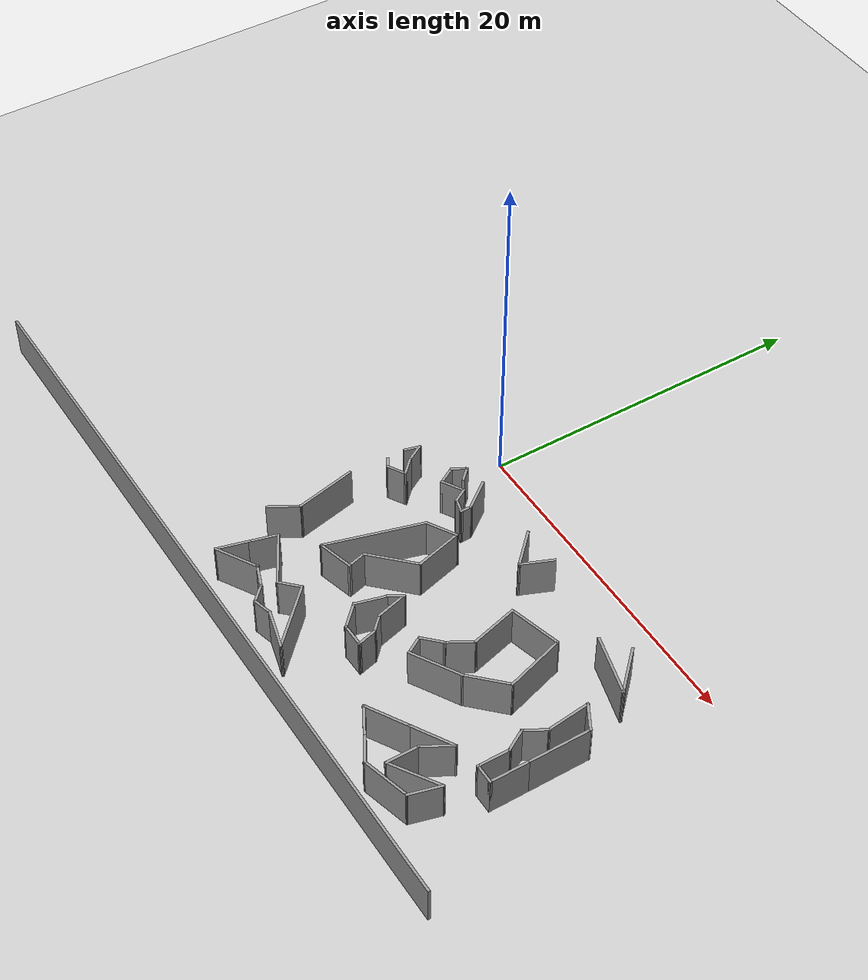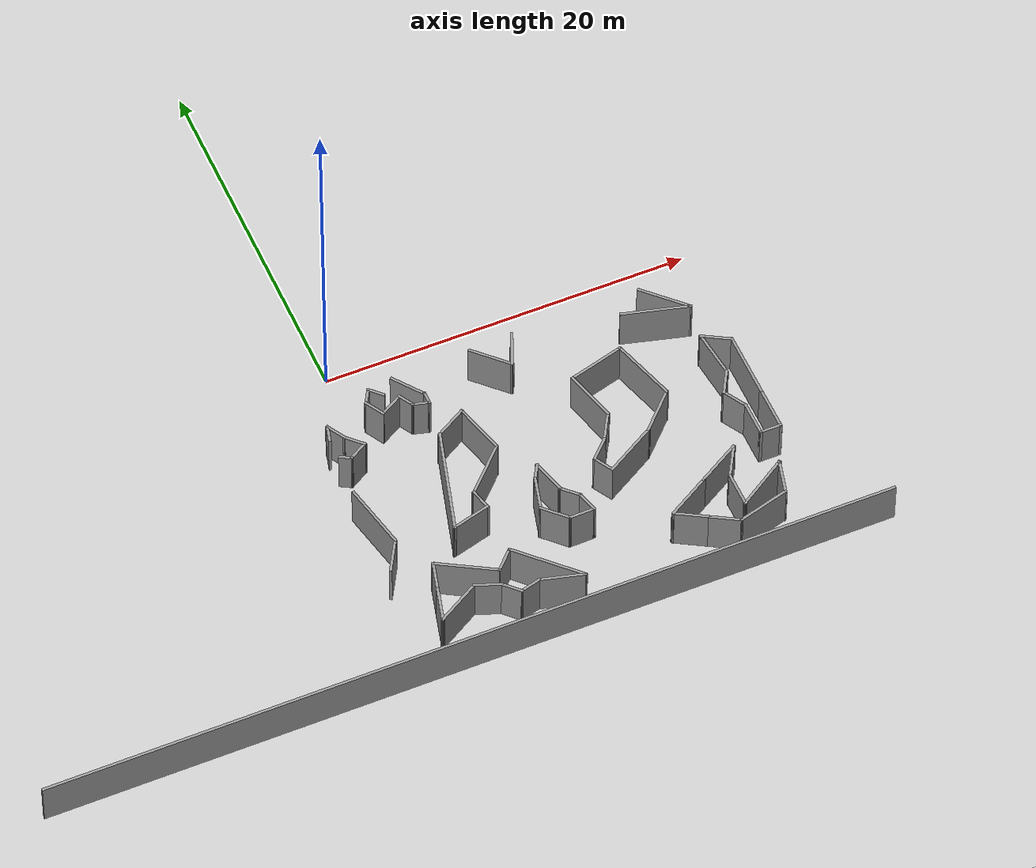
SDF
<sdf version="1.6">
 <world name="default">
  <model name="ground_plane">
   <static>1</static>
   <link name="link">
    <collision name="collision">
     <geometry><plane><normal>0 0 1</normal><size>100 100</size></plane></geometry>
     <surface><friction><ode><mu>100</mu><mu2>50</mu2></ode></friction></surface>
    </collision>
    <visual name="visual">
     <cast_shadows>0</cast_shadows>
     <geometry><plane><normal>0 0 1</normal><size>100 100</size></plane></geometry>
     <material>
      <script><uri>file://media/materials/scripts/gazebo.material</uri><name>Gazebo/Grey</name></script>
     </material>
    </visual>
   </link>
  </model>
  <model name="square_1">
   <pose>0.009703 -0.009719 0 0 -0 0</pose>
   <link name="Wall_10">
    <collision name="Wall_10_Collision">
     <geometry><box><size>1.5 0.15 2.5</size></box></geometry>
     <pose>0 0 1.25 0 -0 0</pose>
    </collision>
    <visual name="Wall_10_Visual">
     <pose>0 0 1.25 0 -0 0</pose>
     <geometry><box><size>1.5 0.15 2.5</size></box></geometry>
     <material>
      <script><uri>file://media/materials/scripts/gazebo.material</uri><name>Gazebo/Grey</name></script>
      <ambient>1 1 1 1</ambient>
     </material>
     <meta><layer>0</layer></meta>
    </visual>
    <pose>1.77578 -4.36071 0 0 -0 0.523599</pose>
   </link>
   <link name="Wall_11">
    <collision name="Wall_11_Collision">
     <geometry><box><size>1 0.15 2.5</size></box></geometry>
     <pose>0 0 1.25 0 -0 0</pose>
    </collision>
    <visual name="Wall_11_Visual">
     <pose>0 0 1.25 0 -0 0</pose>
     <geometry><box><size>1 0.15 2.5</size></box></geometry>
     <material>
      <script><uri>file://media/materials/scripts/gazebo.material</uri><name>Gazebo/Grey</name></script>
      <ambient>1 1 1 1</ambient>
     </material>
     <meta><layer>0</layer></meta>
    </visual>
    <pose>2.57284 -4.39128 0 0 0 -1.0472</pose>
   </link>
   <link name="Wall_12">
    <collision name="Wall_12_Collision">
     <geometry><box><size>1 0.15 2.5</size></box></geometry>
     <pose>0 0 1.25 0 -0 0</pose>
    </collision>
    <visual name="Wall_12_Visual">
     <pose>0 0 1.25 0 -0 0</pose>
     <geometry><box><size>1 0.15 2.5</size></box></geometry>
     <material>
      <script><uri>file://media/materials/scripts/gazebo.material</uri><name>Gazebo/Grey</name></script>
      <ambient>1 1 1 1</ambient>
     </material>
     <meta><layer>0</layer></meta>
    </visual>
    <pose>3.19586 -4.86934 0 0 0 -0.261799</pose>
   </link>
   <link name="Wall_129">
    <collision name="Wall_129_Collision">
     <geometry><box><size>2 0.15 2.5</size></box></geometry>
     <pose>0 0 1.25 0 -0 0</pose>
    </collision>
    <visual name="Wall_129_Visual">
     <pose>0 0 1.25 0 -0 0</pose>
     <geometry><box><size>2 0.15 2.5</size></box></geometry>
     <material>
      <script><uri>file://media/materials/scripts/gazebo.material</uri><name>Gazebo/Grey</name></script>
      <ambient>1 1 1 1</ambient>
     </material>
     <meta><layer>0</layer></meta>
    </visual>
    <pose>4.11459 -6.575 0 0 -0 0.523599</pose>
   </link>
   <link name="Wall_13">
    <collision name="Wall_13_Collision">
     <geometry><box><size>0.75 0.15 2.5</size></box></geometry>
     <pose>0 0 1.25 0 -0 0</pose>
    </collision>
    <visual name="Wall_13_Visual">
     <pose>0 0 1.25 0 -0 0</pose>
     <geometry><box><size>0.75 0.15 2.5</size></box></geometry>
     <material>
      <script><uri>file://media/materials/scripts/gazebo.material</uri><name>Gazebo/Grey</name></script>
      <ambient>1 1 1 1</ambient>
     </material>
     <meta><layer>0</layer></meta>
    </visual>
    <pose>3.60638 -4.67933 0 0 -0 1.5708</pose>
   </link>
   <link name="Wall_130">
    <collision name="Wall_130_Collision">
     <geometry><box><size>3 0.15 2.5</size></box></geometry>
     <pose>0 0 1.25 0 -0 0</pose>
    </collision>
    <visual name="Wall_130_Visual">
     <pose>0 0 1.25 0 -0 0</pose>
     <geometry><box><size>3 0.15 2.5</size></box></geometry>
     <material>
      <script><uri>file://media/materials/scripts/gazebo.material</uri><name>Gazebo/Grey</name></script>
      <ambient>1 1 1 1</ambient>
     </material>
     <meta><layer>0</layer></meta>
    </visual>
    <pose>5.28448 -7.48894 0 0 0 -1.309</pose>
   </link>
   <link name="Wall_131">
    <collision name="Wall_131_Collision">
     <geometry><box><size>3.25 0.15 2.5</size></box></geometry>
     <pose>0 0 1.25 0 -0 0</pose>
    </collision>
    <visual name="Wall_131_Visual">
     <pose>0 0 1.25 0 -0 0</pose>
     <geometry><box><size>3.25 0.15 2.5</size></box></geometry>
     <material>
      <script><uri>file://media/materials/scripts/gazebo.material</uri><name>Gazebo/Grey</name></script>
      <ambient>1 1 1 1</ambient>
     </material>
     <meta><layer>0</layer></meta>
    </visual>
    <pose>4.55728 -9.9614 0 0 0 -2.35619</pose>
   </link>
   <link name="Wall_132">
    <collision name="Wall_132_Collision">
     <geometry><box><size>1.25 0.15 2.5</size></box></geometry>
     <pose>0 0 1.25 0 -0 0</pose>
    </collision>
    <visual name="Wall_132_Visual">
     <pose>0 0 1.25 0 -0 0</pose>
     <geometry><box><size>1.25 0.15 2.5</size></box></geometry>
     <material>
      <script><uri>file://media/materials/scripts/gazebo.material</uri><name>Gazebo/Grey</name></script>
      <ambient>1 1 1 1</ambient>
     </material>
     <meta><layer>0</layer></meta>
    </visual>
    <pose>3.60361 -11.5887 0 0 0 -1.309</pose>
   </link>
   <link name="Wall_133">
    <collision name="Wall_133_Collision">
     <geometry><box><size>2.25 0.15 2.5</size></box></geometry>
     <pose>0 0 1.25 0 -0 0</pose>
    </collision>
    <visual name="Wall_133_Visual">
     <pose>0 0 1.25 0 -0 0</pose>
     <geometry><box><size>2.25 0.15 2.5</size></box></geometry>
     <material>
      <script><uri>file://media/materials/scripts/gazebo.material</uri><name>Gazebo/Grey</name></script>
      <ambient>1 1 1 1</ambient>
     </material>
     <meta><layer>0</layer></meta>
    </visual>
    <pose>2.73174 -12.3917 0 0 0 -2.87979</pose>
   </link>
   <link name="Wall_134">
    <collision name="Wall_134_Collision">
     <geometry><box><size>5.99796 0.15 2.5</size></box></geometry>
     <pose>0 0 1.25 0 -0 0</pose>
    </collision>
    <visual name="Wall_134_Visual">
     <pose>0 0 1.25 0 -0 0</pose>
     <geometry><box><size>5.99796 0.15 2.5</size></box></geometry>
     <material>
      <script><uri>file://media/materials/scripts/gazebo.material</uri><name>Gazebo/Grey</name></script>
      <ambient>1 1 1 1</ambient>
     </material>
     <meta><layer>0</layer></meta>
    </visual>
    <pose>2.51552 -9.85048 0 0 -0 1.29438</pose>
   </link>
   <link name="Wall_139">
    <collision name="Wall_139_Collision">
     <geometry><box><size>2 0.15 2.5</size></box></geometry>
     <pose>0 0 1.25 0 -0 0</pose>
    </collision>
    <visual name="Wall_139_Visual">
     <pose>0 0 1.25 0 -0 0</pose>
     <geometry><box><size>2 0.15 2.5</size></box></geometry>
     <material>
      <script><uri>file://media/materials/scripts/gazebo.material</uri><name>Gazebo/Grey</name></script>
      <ambient>1 1 1 1</ambient>
     </material>
     <meta><layer>0</layer></meta>
    </visual>
    <pose>-1.80211 -13.0057 0 0 -0 1.0472</pose>
   </link>
   <link name="Wall_14">
    <collision name="Wall_14_Collision">
     <geometry><box><size>2.0841 0.15 2.5</size></box></geometry>
     <pose>0 0 1.25 0 -0 0</pose>
    </collision>
    <visual name="Wall_14_Visual">
     <pose>0 0 1.25 0 -0 0</pose>
     <geometry><box><size>2.0841 0.15 2.5</size></box></geometry>
     <material>
      <script><uri>file://media/materials/scripts/gazebo.material</uri><name>Gazebo/Grey</name></script>
      <ambient>1 1 1 1</ambient>
     </material>
     <meta><layer>0</layer></meta>
    </visual>
    <pose>3.02572 -3.60601 0 0 -0 2.21485</pose>
   </link>
   <link name="Wall_140">
    <collision name="Wall_140_Collision">
     <geometry><box><size>3.78108 0.15 2.5</size></box></geometry>
     <pose>0 0 1.25 0 -0 0</pose>
    </collision>
    <visual name="Wall_140_Visual">
     <pose>0 0 1.25 0 -0 0</pose>
     <geometry><box><size>3.78108 0.15 2.5</size></box></geometry>
     <material>
      <script><uri>file://media/materials/scripts/gazebo.material</uri><name>Gazebo/Grey</name></script>
      <ambient>1 1 1 1</ambient>
     </material>
     <meta><layer>0</layer></meta>
    </visual>
    <pose>-1.72357 -10.4302 0 0 -0 1.78389</pose>
   </link>
   <link name="Wall_142">
    <collision name="Wall_142_Collision">
     <geometry><box><size>3.25 0.15 2.5</size></box></geometry>
     <pose>0 0 1.25 0 -0 0</pose>
    </collision>
    <visual name="Wall_142_Visual">
     <pose>0 0 1.25 0 -0 0</pose>
     <geometry><box><size>3.25 0.15 2.5</size></box></geometry>
     <material>
      <script><uri>file://media/materials/scripts/gazebo.material</uri><name>Gazebo/Grey</name></script>
      <ambient>1 1 1 1</ambient>
     </material>
     <meta><layer>0</layer></meta>
    </visual>
    <pose>12.4157 -6.06318 0 0 0 -2.87979</pose>
   </link>
   <link name="Wall_143">
    <collision name="Wall_143_Collision">
     <geometry><box><size>3 0.15 2.5</size></box></geometry>
     <pose>0 0 1.25 0 -0 0</pose>
    </collision>
    <visual name="Wall_143_Visual">
     <pose>0 0 1.25 0 -0 0</pose>
     <geometry><box><size>3 0.15 2.5</size></box></geometry>
     <material>
      <script><uri>file://media/materials/scripts/gazebo.material</uri><name>Gazebo/Grey</name></script>
      <ambient>1 1 1 1</ambient>
     </material>
     <meta><layer>0</layer></meta>
    </visual>
    <pose>11.2873 -7.84079 0 0 0 -1.309</pose>
   </link>
   <link name="Wall_144">
    <collision name="Wall_144_Collision">
     <geometry><box><size>1.75 0.15 2.5</size></box></geometry>
     <pose>0 0 1.25 0 -0 0</pose>
    </collision>
    <visual name="Wall_144_Visual">
     <pose>0 0 1.25 0 -0 0</pose>
     <geometry><box><size>1.75 0.15 2.5</size></box></geometry>
     <material>
      <script><uri>file://media/materials/scripts/gazebo.material</uri><name>Gazebo/Grey</name></script>
      <ambient>1 1 1 1</ambient>
     </material>
     <meta><layer>0</layer></meta>
    </visual>
    <pose>11.2561 -9.91006 0 0 0 -2.0944</pose>
   </link>
   <link name="Wall_145">
    <collision name="Wall_145_Collision">
     <geometry><box><size>1.5 0.15 2.5</size></box></geometry>
     <pose>0 0 1.25 0 -0 0</pose>
    </collision>
    <visual name="Wall_145_Visual">
     <pose>0 0 1.25 0 -0 0</pose>
     <geometry><box><size>1.5 0.15 2.5</size></box></geometry>
     <material>
      <script><uri>file://media/materials/scripts/gazebo.material</uri><name>Gazebo/Grey</name></script>
      <ambient>1 1 1 1</ambient>
     </material>
     <meta><layer>0</layer></meta>
    </visual>
    <pose>10.3788 -11.0802 0 0 0 -2.35619</pose>
   </link>
   <link name="Wall_146">
    <collision name="Wall_146_Collision">
     <geometry><box><size>1.25 0.15 2.5</size></box></geometry>
     <pose>0 0 1.25 0 -0 0</pose>
    </collision>
    <visual name="Wall_146_Visual">
     <pose>0 0 1.25 0 -0 0</pose>
     <geometry><box><size>1.25 0.15 2.5</size></box></geometry>
     <material>
      <script><uri>file://media/materials/scripts/gazebo.material</uri><name>Gazebo/Grey</name></script>
      <ambient>1 1 1 1</ambient>
     </material>
     <meta><layer>0</layer></meta>
    </visual>
    <pose>10.1765 -12.0338 0 0 0 -1.0472</pose>
   </link>
   <link name="Wall_147">
    <collision name="Wall_147_Collision">
     <geometry><box><size>3.25 0.15 2.5</size></box></geometry>
     <pose>0 0 1.25 0 -0 0</pose>
    </collision>
    <visual name="Wall_147_Visual">
     <pose>0 0 1.25 0 -0 0</pose>
     <geometry><box><size>3.25 0.15 2.5</size></box></geometry>
     <material>
      <script><uri>file://media/materials/scripts/gazebo.material</uri><name>Gazebo/Grey</name></script>
      <ambient>1 1 1 1</ambient>
     </material>
     <meta><layer>0</layer></meta>
    </visual>
    <pose>11.7939 -11.7351 0 0 -0 0.523599</pose>
   </link>
   <link name="Wall_148">
    <collision name="Wall_148_Collision">
     <geometry><box><size>2.75 0.15 2.5</size></box></geometry>
     <pose>0 0 1.25 0 -0 0</pose>
    </collision>
    <visual name="Wall_148_Visual">
     <pose>0 0 1.25 0 -0 0</pose>
     <geometry><box><size>2.75 0.15 2.5</size></box></geometry>
     <material>
      <script><uri>file://media/materials/scripts/gazebo.material</uri><name>Gazebo/Grey</name></script>
      <ambient>1 1 1 1</ambient>
     </material>
     <meta><layer>0</layer></meta>
    </visual>
    <pose>14.0555 -10.0409 0 0 -0 0.785398</pose>
   </link>
   <link name="Wall_149">
    <collision name="Wall_149_Collision">
     <geometry><box><size>3.76889 0.15 2.5</size></box></geometry>
     <pose>0 0 1.25 0 -0 0</pose>
    </collision>
    <visual name="Wall_149_Visual">
     <pose>0 0 1.25 0 -0 0</pose>
     <geometry><box><size>3.76889 0.15 2.5</size></box></geometry>
     <material>
      <script><uri>file://media/materials/scripts/gazebo.material</uri><name>Gazebo/Grey</name></script>
      <ambient>1 1 1 1</ambient>
     </material>
     <meta><layer>0</layer></meta>
    </visual>
    <pose>14.4438 -7.39182 0 0 -0 1.86859</pose>
   </link>
   <link name="Wall_178">
    <collision name="Wall_178_Collision">
     <geometry><box><size>3 0.15 2.5</size></box></geometry>
     <pose>0 0 1.25 0 -0 0</pose>
    </collision>
    <visual name="Wall_178_Visual">
     <pose>0 0 1.25 0 -0 0</pose>
     <geometry><box><size>3 0.15 2.5</size></box></geometry>
     <material>
      <script><uri>file://media/materials/scripts/gazebo.material</uri><name>Gazebo/Grey</name></script>
      <ambient>1 1 1 1</ambient>
     </material>
     <meta><layer>0</layer></meta>
    </visual>
    <pose>17.319 -3.63217 0 0 0 -0.785398</pose>
   </link>
   <link name="Wall_179">
    <collision name="Wall_179_Collision">
     <geometry><box><size>3.75 0.15 2.5</size></box></geometry>
     <pose>0 0 1.25 0 -0 0</pose>
    </collision>
    <visual name="Wall_179_Visual">
     <pose>0 0 1.25 0 -0 0</pose>
     <geometry><box><size>3.75 0.15 2.5</size></box></geometry>
     <material>
      <script><uri>file://media/materials/scripts/gazebo.material</uri><name>Gazebo/Grey</name></script>
      <ambient>1 1 1 1</ambient>
     </material>
     <meta><layer>0</layer></meta>
    </visual>
    <pose>16.5879 -4.17392 0 0 -0 2.87979</pose>
   </link>
   <link name="Wall_224">
    <collision name="Wall_224_Collision">
     <geometry><box><size>1.75 0.15 2.5</size></box></geometry>
     <pose>0 0 1.25 0 -0 0</pose>
    </collision>
    <visual name="Wall_224_Visual">
     <pose>0 0 1.25 0 -0 0</pose>
     <geometry><box><size>1.75 0.15 2.5</size></box></geometry>
     <material>
      <script><uri>file://media/materials/scripts/gazebo.material</uri><name>Gazebo/Grey</name></script>
      <ambient>1 1 1 1</ambient>
     </material>
     <meta><layer>0</layer></meta>
    </visual>
    <pose>6.72677 -13.8387 0 0 -0 2.35619</pose>
   </link>
   <link name="Wall_225">
    <collision name="Wall_225_Collision">
     <geometry><box><size>2 0.15 2.5</size></box></geometry>
     <pose>0 0 1.25 0 -0 0</pose>
    </collision>
    <visual name="Wall_225_Visual">
     <pose>0 0 1.25 0 -0 0</pose>
     <geometry><box><size>2 0.15 2.5</size></box></geometry>
     <material>
      <script><uri>file://media/materials/scripts/gazebo.material</uri><name>Gazebo/Grey</name></script>
      <ambient>1 1 1 1</ambient>
     </material>
     <meta><layer>0</layer></meta>
    </visual>
    <pose>6.40049 -12.3795 0 0 -0 1.309</pose>
   </link>
   <link name="Wall_226">
    <collision name="Wall_226_Collision">
     <geometry><box><size>1 0.15 2.5</size></box></geometry>
     <pose>0 0 1.25 0 -0 0</pose>
    </collision>
    <visual name="Wall_226_Visual">
     <pose>0 0 1.25 0 -0 0</pose>
     <geometry><box><size>1 0.15 2.5</size></box></geometry>
     <material>
      <script><uri>file://media/materials/scripts/gazebo.material</uri><name>Gazebo/Grey</name></script>
      <ambient>1 1 1 1</ambient>
     </material>
     <meta><layer>0</layer></meta>
    </visual>
    <pose>6.8524 -11.118 0 0 -0 1.0472</pose>
   </link>
   <link name="Wall_227">
    <collision name="Wall_227_Collision">
     <geometry><box><size>2 0.15 2.5</size></box></geometry>
     <pose>0 0 1.25 0 -0 0</pose>
    </collision>
    <visual name="Wall_227_Visual">
     <pose>0 0 1.25 0 -0 0</pose>
     <geometry><box><size>2 0.15 2.5</size></box></geometry>
     <material>
      <script><uri>file://media/materials/scripts/gazebo.material</uri><name>Gazebo/Grey</name></script>
      <ambient>1 1 1 1</ambient>
     </material>
     <meta><layer>0</layer></meta>
    </visual>
    <pose>7.3043 -11.6434 0 0 0 -1.309</pose>
   </link>
   <link name="Wall_228">
    <collision name="Wall_228_Collision">
     <geometry><box><size>1.25 0.15 2.5</size></box></geometry>
     <pose>0 0 1.25 0 -0 0</pose>
    </collision>
    <visual name="Wall_228_Visual">
     <pose>0 0 1.25 0 -0 0</pose>
     <geometry><box><size>1.25 0.15 2.5</size></box></geometry>
     <material>
      <script><uri>file://media/materials/scripts/gazebo.material</uri><name>Gazebo/Grey</name></script>
      <ambient>1 1 1 1</ambient>
     </material>
     <meta><layer>0</layer></meta>
    </visual>
    <pose>7.93262 -12.9258 0 0 0 -0.785398</pose>
   </link>
   <link name="Wall_229">
    <collision name="Wall_229_Collision">
     <geometry><box><size>1.25 0.15 2.5</size></box></geometry>
     <pose>0 0 1.25 0 -0 0</pose>
    </collision>
    <visual name="Wall_229_Visual">
     <pose>0 0 1.25 0 -0 0</pose>
     <geometry><box><size>1.25 0.15 2.5</size></box></geometry>
     <material>
      <script><uri>file://media/materials/scripts/gazebo.material</uri><name>Gazebo/Grey</name></script>
      <ambient>1 1 1 1</ambient>
     </material>
     <meta><layer>0</layer></meta>
    </visual>
    <pose>8.46388 -13.8459 0 0 0 -1.309</pose>
   </link>
   <link name="Wall_230">
    <collision name="Wall_230_Collision">
     <geometry><box><size>1.46406 0.15 2.5</size></box></geometry>
     <pose>0 0 1.25 0 -0 0</pose>
    </collision>
    <visual name="Wall_230_Visual">
     <pose>0 0 1.25 0 -0 0</pose>
     <geometry><box><size>1.46406 0.15 2.5</size></box></geometry>
     <material>
      <script><uri>file://media/materials/scripts/gazebo.material</uri><name>Gazebo/Grey</name></script>
      <ambient>1 1 1 1</ambient>
     </material>
     <meta><layer>0</layer></meta>
    </visual>
    <pose>7.94934 -14.3908 0 0 0 -3.12093</pose>
   </link>
   <link name="Wall_232">
    <collision name="Wall_232_Collision">
     <geometry><box><size>2.75 0.15 2.5</size></box></geometry>
     <pose>0 0 1.25 0 -0 0</pose>
    </collision>
    <visual name="Wall_232_Visual">
     <pose>0 0 1.25 0 -0 0</pose>
     <geometry><box><size>2.75 0.15 2.5</size></box></geometry>
     <material>
      <script><uri>file://media/materials/scripts/gazebo.material</uri><name>Gazebo/Grey</name></script>
      <ambient>1 1 1 1</ambient>
     </material>
     <meta><layer>0</layer></meta>
    </visual>
    <pose>0.080692 -16.954 0 0 0 -2.61799</pose>
   </link>
   <link name="Wall_233">
    <collision name="Wall_233_Collision">
     <geometry><box><size>2 0.15 2.5</size></box></geometry>
     <pose>0 0 1.25 0 -0 0</pose>
    </collision>
    <visual name="Wall_233_Visual">
     <pose>0 0 1.25 0 -0 0</pose>
     <geometry><box><size>2 0.15 2.5</size></box></geometry>
     <material>
      <script><uri>file://media/materials/scripts/gazebo.material</uri><name>Gazebo/Grey</name></script>
      <ambient>1 1 1 1</ambient>
     </material>
     <meta><layer>0</layer></meta>
    </visual>
    <pose>-0.805733 -16.7105 0 0 -0 1.309</pose>
   </link>
   <link name="Wall_234">
    <collision name="Wall_234_Collision">
     <geometry><box><size>1.75 0.15 2.5</size></box></geometry>
     <pose>0 0 1.25 0 -0 0</pose>
    </collision>
    <visual name="Wall_234_Visual">
     <pose>0 0 1.25 0 -0 0</pose>
     <geometry><box><size>1.75 0.15 2.5</size></box></geometry>
     <material>
      <script><uri>file://media/materials/scripts/gazebo.material</uri><name>Gazebo/Grey</name></script>
      <ambient>1 1 1 1</ambient>
     </material>
     <meta><layer>0</layer></meta>
    </visual>
    <pose>-0.35927 -15.0443 0 0 -0 1.309</pose>
   </link>
   <link name="Wall_235">
    <collision name="Wall_235_Collision">
     <geometry><box><size>3.5 0.15 2.5</size></box></geometry>
     <pose>0 0 1.25 0 -0 0</pose>
    </collision>
    <visual name="Wall_235_Visual">
     <pose>0 0 1.25 0 -0 0</pose>
     <geometry><box><size>3.5 0.15 2.5</size></box></geometry>
     <material>
      <script><uri>file://media/materials/scripts/gazebo.material</uri><name>Gazebo/Grey</name></script>
      <ambient>1 1 1 1</ambient>
     </material>
     <meta><layer>0</layer></meta>
    </visual>
    <pose>1.29838 -15.1091 0 0 0 -0.523599</pose>
   </link>
   <link name="Wall_236">
    <collision name="Wall_236_Collision">
     <geometry><box><size>1.5 0.15 2.5</size></box></geometry>
     <pose>0 0 1.25 0 -0 0</pose>
    </collision>
    <visual name="Wall_236_Visual">
     <pose>0 0 1.25 0 -0 0</pose>
     <geometry><box><size>1.5 0.15 2.5</size></box></geometry>
     <material>
      <script><uri>file://media/materials/scripts/gazebo.material</uri><name>Gazebo/Grey</name></script>
      <ambient>1 1 1 1</ambient>
     </material>
     <meta><layer>0</layer></meta>
    </visual>
    <pose>3.22627 -15.4693 0 0 -0 0.785398</pose>
   </link>
   <link name="Wall_237">
    <collision name="Wall_237_Collision">
     <geometry><box><size>4.25 0.15 2.5</size></box></geometry>
     <pose>0 0 1.25 0 -0 0</pose>
    </collision>
    <visual name="Wall_237_Visual">
     <pose>0 0 1.25 0 -0 0</pose>
     <geometry><box><size>4.25 0.15 2.5</size></box></geometry>
     <material>
      <script><uri>file://media/materials/scripts/gazebo.material</uri><name>Gazebo/Grey</name></script>
      <ambient>1 1 1 1</ambient>
     </material>
     <meta><layer>0</layer></meta>
    </visual>
    <pose>5.15313 -16.4415 0 0 0 -0.785398</pose>
   </link>
   <link name="Wall_238">
    <collision name="Wall_238_Collision">
     <geometry><box><size>2.5 0.15 2.5</size></box></geometry>
     <pose>0 0 1.25 0 -0 0</pose>
    </collision>
    <visual name="Wall_238_Visual">
     <pose>0 0 1.25 0 -0 0</pose>
     <geometry><box><size>2.5 0.15 2.5</size></box></geometry>
     <material>
      <script><uri>file://media/materials/scripts/gazebo.material</uri><name>Gazebo/Grey</name></script>
      <ambient>1 1 1 1</ambient>
     </material>
     <meta><layer>0</layer></meta>
    </visual>
    <pose>5.46774 -17.587 0 0 -0 2.87979</pose>
   </link>
   <link name="Wall_239">
    <collision name="Wall_239_Collision">
     <geometry><box><size>1.25 0.15 2.5</size></box></geometry>
     <pose>0 0 1.25 0 -0 0</pose>
    </collision>
    <visual name="Wall_239_Visual">
     <pose>0 0 1.25 0 -0 0</pose>
     <geometry><box><size>1.25 0.15 2.5</size></box></geometry>
     <material>
      <script><uri>file://media/materials/scripts/gazebo.material</uri><name>Gazebo/Grey</name></script>
      <ambient>1 1 1 1</ambient>
     </material>
     <meta><layer>0</layer></meta>
    </visual>
    <pose>3.80152 -17.4252 0 0 0 -2.87979</pose>
   </link>
   <link name="Wall_240">
    <collision name="Wall_240_Collision">
     <geometry><box><size>1.25 0.15 2.5</size></box></geometry>
     <pose>0 0 1.25 0 -0 0</pose>
    </collision>
    <visual name="Wall_240_Visual">
     <pose>0 0 1.25 0 -0 0</pose>
     <geometry><box><size>1.25 0.15 2.5</size></box></geometry>
     <material>
      <script><uri>file://media/materials/scripts/gazebo.material</uri><name>Gazebo/Grey</name></script>
      <ambient>1 1 1 1</ambient>
     </material>
     <meta><layer>0</layer></meta>
    </visual>
    <pose>2.88135 -17.1787 0 0 -0 2.35619</pose>
   </link>
   <link name="Wall_241">
    <collision name="Wall_241_Collision">
     <geometry><box><size>1.5246 0.15 2.5</size></box></geometry>
     <pose>0 0 1.25 0 -0 0</pose>
    </collision>
    <visual name="Wall_241_Visual">
     <pose>0 0 1.25 0 -0 0</pose>
     <geometry><box><size>1.5246 0.15 2.5</size></box></geometry>
     <material>
      <script><uri>file://media/materials/scripts/gazebo.material</uri><name>Gazebo/Grey</name></script>
      <ambient>1 1 1 1</ambient>
     </material>
     <meta><layer>0</layer></meta>
    </visual>
    <pose>1.84948 -16.5469 0 0 -0 2.78041</pose>
   </link>
   <link name="Wall_244">
    <collision name="Wall_244_Collision">
     <geometry><box><size>46.25 0.15 2.5</size></box></geometry>
     <pose>0 0 1.25 0 -0 0</pose>
    </collision>
    <visual name="Wall_244_Visual">
     <pose>0 0 1.25 0 -0 0</pose>
     <geometry><box><size>46.25 0.15 2.5</size></box></geometry>
     <material>
      <script><uri>file://media/materials/scripts/gazebo.material</uri><name>Gazebo/Grey</name></script>
      <ambient>1 1 1 1</ambient>
     </material>
     <meta><layer>0</layer></meta>
    </visual>
    <pose>1e-06 -19.175 0 0 -0 0</pose>
   </link>
   <link name="Wall_269">
    <collision name="Wall_269_Collision">
     <geometry><box><size>2 0.15 2.5</size></box></geometry>
     <pose>0 0 1.25 0 -0 0</pose>
    </collision>
    <visual name="Wall_269_Visual">
     <pose>0 0 1.25 0 -0 0</pose>
     <geometry><box><size>2 0.15 2.5</size></box></geometry>
     <material>
      <script><uri>file://media/materials/scripts/gazebo.material</uri><name>Gazebo/Grey</name></script>
      <ambient>1 1 1 1</ambient>
     </material>
     <meta><layer>0</layer></meta>
    </visual>
    <pose>15.7447 -16.1479 0 0 -0 1.5708</pose>
   </link>
   <link name="Wall_270">
    <collision name="Wall_270_Collision">
     <geometry><box><size>2 0.15 2.5</size></box></geometry>
     <pose>0 0 1.25 0 -0 0</pose>
    </collision>
    <visual name="Wall_270_Visual">
     <pose>0 0 1.25 0 -0 0</pose>
     <geometry><box><size>2 0.15 2.5</size></box></geometry>
     <material>
      <script><uri>file://media/materials/scripts/gazebo.material</uri><name>Gazebo/Grey</name></script>
      <ambient>1 1 1 1</ambient>
     </material>
     <meta><layer>0</layer></meta>
    </visual>
    <pose>16.2072 -14.4218 0 0 -0 1.0472</pose>
   </link>
   <link name="Wall_271">
    <collision name="Wall_271_Collision">
     <geometry><box><size>2.75 0.15 2.5</size></box></geometry>
     <pose>0 0 1.25 0 -0 0</pose>
    </collision>
    <visual name="Wall_271_Visual">
     <pose>0 0 1.25 0 -0 0</pose>
     <geometry><box><size>2.75 0.15 2.5</size></box></geometry>
     <material>
      <script><uri>file://media/materials/scripts/gazebo.material</uri><name>Gazebo/Grey</name></script>
      <ambient>1 1 1 1</ambient>
     </material>
     <meta><layer>0</layer></meta>
    </visual>
    <pose>15.5438 -14.2707 0 0 0 -2.61799</pose>
   </link>
   <link name="Wall_272">
    <collision name="Wall_272_Collision">
     <geometry><box><size>2.75 0.15 2.5</size></box></geometry>
     <pose>0 0 1.25 0 -0 0</pose>
    </collision>
    <visual name="Wall_272_Visual">
     <pose>0 0 1.25 0 -0 0</pose>
     <geometry><box><size>2.75 0.15 2.5</size></box></geometry>
     <material>
      <script><uri>file://media/materials/scripts/gazebo.material</uri><name>Gazebo/Grey</name></script>
      <ambient>1 1 1 1</ambient>
     </material>
     <meta><layer>0</layer></meta>
    </visual>
    <pose>13.2922 -15.5707 0 0 0 -2.61799</pose>
   </link>
   <link name="Wall_273">
    <collision name="Wall_273_Collision">
     <geometry><box><size>2 0.15 2.5</size></box></geometry>
     <pose>0 0 1.25 0 -0 0</pose>
    </collision>
    <visual name="Wall_273_Visual">
     <pose>0 0 1.25 0 -0 0</pose>
     <geometry><box><size>2 0.15 2.5</size></box></geometry>
     <material>
      <script><uri>file://media/materials/scripts/gazebo.material</uri><name>Gazebo/Grey</name></script>
      <ambient>1 1 1 1</ambient>
     </material>
     <meta><layer>0</layer></meta>
    </visual>
    <pose>12.9674 -16.6832 0 0 0 -0.523599</pose>
   </link>
   <link name="Wall_274">
    <collision name="Wall_274_Collision">
     <geometry><box><size>1.75 0.15 2.5</size></box></geometry>
     <pose>0 0 1.25 0 -0 0</pose>
    </collision>
    <visual name="Wall_274_Visual">
     <pose>0 0 1.25 0 -0 0</pose>
     <geometry><box><size>1.75 0.15 2.5</size></box></geometry>
     <material>
      <script><uri>file://media/materials/scripts/gazebo.material</uri><name>Gazebo/Grey</name></script>
      <ambient>1 1 1 1</ambient>
     </material>
     <meta><layer>0</layer></meta>
    </visual>
    <pose>14.4613 -17.5457 0 0 0 -0.523599</pose>
   </link>
   <link name="Wall_275">
    <collision name="Wall_275_Collision">
     <geometry><box><size>3 0.15 2.5</size></box></geometry>
     <pose>0 0 1.25 0 -0 0</pose>
    </collision>
    <visual name="Wall_275_Visual">
     <pose>0 0 1.25 0 -0 0</pose>
     <geometry><box><size>3 0.15 2.5</size></box></geometry>
     <material>
      <script><uri>file://media/materials/scripts/gazebo.material</uri><name>Gazebo/Grey</name></script>
      <ambient>1 1 1 1</ambient>
     </material>
     <meta><layer>0</layer></meta>
    </visual>
    <pose>16.5306 -17.5769 0 0 -0 0.261799</pose>
   </link>
   <link name="Wall_276">
    <collision name="Wall_276_Collision">
     <geometry><box><size>2 0.15 2.5</size></box></geometry>
     <pose>0 0 1.25 0 -0 0</pose>
    </collision>
    <visual name="Wall_276_Visual">
     <pose>0 0 1.25 0 -0 0</pose>
     <geometry><box><size>2 0.15 2.5</size></box></geometry>
     <material>
      <script><uri>file://media/materials/scripts/gazebo.material</uri><name>Gazebo/Grey</name></script>
      <ambient>1 1 1 1</ambient>
     </material>
     <meta><layer>0</layer></meta>
    </visual>
    <pose>18.1464 -16.3146 0 0 -0 1.309</pose>
   </link>
   <link name="Wall_277">
    <collision name="Wall_277_Collision">
     <geometry><box><size>3.26512 0.15 2.5</size></box></geometry>
     <pose>0 0 1.25 0 -0 0</pose>
    </collision>
    <visual name="Wall_277_Visual">
     <pose>0 0 1.25 0 -0 0</pose>
     <geometry><box><size>3.26512 0.15 2.5</size></box></geometry>
     <material>
      <script><uri>file://media/materials/scripts/gazebo.material</uri><name>Gazebo/Grey</name></script>
      <ambient>1 1 1 1</ambient>
     </material>
     <meta><layer>0</layer></meta>
    </visual>
    <pose>17.0652 -16.247 0 0 0 -2.58272</pose>
   </link>
   <link name="Wall_279">
    <collision name="Wall_279_Collision">
     <geometry><box><size>1.5 0.15 2.5</size></box></geometry>
     <pose>0 0 1.25 0 -0 0</pose>
    </collision>
    <visual name="Wall_279_Visual">
     <pose>0 0 1.25 0 -0 0</pose>
     <geometry><box><size>1.5 0.15 2.5</size></box></geometry>
     <material>
      <script><uri>file://media/materials/scripts/gazebo.material</uri><name>Gazebo/Grey</name></script>
      <ambient>1 1 1 1</ambient>
     </material>
     <meta><layer>0</layer></meta>
    </visual>
    <pose>17.966 -9.7484 0 0 0 -2.0944</pose>
   </link>
   <link name="Wall_280">
    <collision name="Wall_280_Collision">
     <geometry><box><size>1.5 0.15 2.5</size></box></geometry>
     <pose>0 0 1.25 0 -0 0</pose>
    </collision>
    <visual name="Wall_280_Visual">
     <pose>0 0 1.25 0 -0 0</pose>
     <geometry><box><size>1.5 0.15 2.5</size></box></geometry>
     <material>
      <script><uri>file://media/materials/scripts/gazebo.material</uri><name>Gazebo/Grey</name></script>
      <ambient>1 1 1 1</ambient>
     </material>
     <meta><layer>0</layer></meta>
    </visual>
    <pose>17.966 -10.9175 0 0 0 -1.0472</pose>
   </link>
   <link name="Wall_281">
    <collision name="Wall_281_Collision">
     <geometry><box><size>2 0.15 2.5</size></box></geometry>
     <pose>0 0 1.25 0 -0 0</pose>
    </collision>
    <visual name="Wall_281_Visual">
     <pose>0 0 1.25 0 -0 0</pose>
     <geometry><box><size>2 0.15 2.5</size></box></geometry>
     <material>
      <script><uri>file://media/materials/scripts/gazebo.material</uri><name>Gazebo/Grey</name></script>
      <ambient>1 1 1 1</ambient>
     </material>
     <meta><layer>0</layer></meta>
    </visual>
    <pose>18.3035 -12.4271 0 0 0 -1.5708</pose>
   </link>
   <link name="Wall_282">
    <collision name="Wall_282_Collision">
     <geometry><box><size>1.25 0.15 2.5</size></box></geometry>
     <pose>0 0 1.25 0 -0 0</pose>
    </collision>
    <visual name="Wall_282_Visual">
     <pose>0 0 1.25 0 -0 0</pose>
     <geometry><box><size>1.25 0.15 2.5</size></box></geometry>
     <material>
      <script><uri>file://media/materials/scripts/gazebo.material</uri><name>Gazebo/Grey</name></script>
      <ambient>1 1 1 1</ambient>
     </material>
     <meta><layer>0</layer></meta>
    </visual>
    <pose>18.8535 -13.3521 0 0 -0 0</pose>
   </link>
   <link name="Wall_283">
    <collision name="Wall_283_Collision">
     <geometry><box><size>2.5 0.15 2.5</size></box></geometry>
     <pose>0 0 1.25 0 -0 0</pose>
    </collision>
    <visual name="Wall_283_Visual">
     <pose>0 0 1.25 0 -0 0</pose>
     <geometry><box><size>2.5 0.15 2.5</size></box></geometry>
     <material>
      <script><uri>file://media/materials/scripts/gazebo.material</uri><name>Gazebo/Grey</name></script>
      <ambient>1 1 1 1</ambient>
     </material>
     <meta><layer>0</layer></meta>
    </visual>
    <pose>19.4035 -12.1771 0 0 -0 1.5708</pose>
   </link>
   <link name="Wall_284">
    <collision name="Wall_284_Collision">
     <geometry><box><size>3.75 0.15 2.5</size></box></geometry>
     <pose>0 0 1.25 0 -0 0</pose>
    </collision>
    <visual name="Wall_284_Visual">
     <pose>0 0 1.25 0 -0 0</pose>
     <geometry><box><size>3.75 0.15 2.5</size></box></geometry>
     <material>
      <script><uri>file://media/materials/scripts/gazebo.material</uri><name>Gazebo/Grey</name></script>
      <ambient>1 1 1 1</ambient>
     </material>
     <meta><layer>0</layer></meta>
    </visual>
    <pose>19.4035 -9.2021 0 0 -0 1.5708</pose>
   </link>
   <link name="Wall_285">
    <collision name="Wall_285_Collision">
     <geometry><box><size>1.75 0.15 2.5</size></box></geometry>
     <pose>0 0 1.25 0 -0 0</pose>
    </collision>
    <visual name="Wall_285_Visual">
     <pose>0 0 1.25 0 -0 0</pose>
     <geometry><box><size>1.75 0.15 2.5</size></box></geometry>
     <material>
      <script><uri>file://media/materials/scripts/gazebo.material</uri><name>Gazebo/Grey</name></script>
      <ambient>1 1 1 1</ambient>
     </material>
     <meta><layer>0</layer></meta>
    </visual>
    <pose>18.7107 -7.0021 0 0 -0 2.61799</pose>
   </link>
   <link name="Wall_286">
    <collision name="Wall_286_Collision">
     <geometry><box><size>2.72761 0.15 2.5</size></box></geometry>
     <pose>0 0 1.25 0 -0 0</pose>
    </collision>
    <visual name="Wall_286_Visual">
     <pose>0 0 1.25 0 -0 0</pose>
     <geometry><box><size>2.72761 0.15 2.5</size></box></geometry>
     <material>
      <script><uri>file://media/materials/scripts/gazebo.material</uri><name>Gazebo/Grey</name></script>
      <ambient>1 1 1 1</ambient>
     </material>
     <meta><layer>0</layer></meta>
    </visual>
    <pose>18.1607 -7.88296 0 0 0 -1.45975</pose>
   </link>
   <link name="Wall_32">
    <collision name="Wall_32_Collision">
     <geometry><box><size>1 0.15 2.5</size></box></geometry>
     <pose>0 0 1.25 0 -0 0</pose>
    </collision>
    <visual name="Wall_32_Visual">
     <pose>0 0 1.25 0 -0 0</pose>
     <geometry><box><size>1 0.15 2.5</size></box></geometry>
     <material>
      <script><uri>file://media/materials/scripts/gazebo.material</uri><name>Gazebo/Grey</name></script>
      <ambient>1 1 1 1</ambient>
     </material>
     <meta><layer>0</layer></meta>
    </visual>
    <pose>-1.85243 -4.76584 0 0 -0 1.309</pose>
   </link>
   <link name="Wall_33">
    <collision name="Wall_33_Collision">
     <geometry><box><size>1.25 0.15 2.5</size></box></geometry>
     <pose>0 0 1.25 0 -0 0</pose>
    </collision>
    <visual name="Wall_33_Visual">
     <pose>0 0 1.25 0 -0 0</pose>
     <geometry><box><size>1.25 0.15 2.5</size></box></geometry>
     <material>
      <script><uri>file://media/materials/scripts/gazebo.material</uri><name>Gazebo/Grey</name></script>
      <ambient>1 1 1 1</ambient>
     </material>
     <meta><layer>0</layer></meta>
    </visual>
    <pose>-1.46743 -4.83163 0 0 0 -1.0472</pose>
   </link>
   <link name="Wall_34">
    <collision name="Wall_34_Collision">
     <geometry><box><size>1.25 0.15 2.5</size></box></geometry>
     <pose>0 0 1.25 0 -0 0</pose>
    </collision>
    <visual name="Wall_34_Visual">
     <pose>0 0 1.25 0 -0 0</pose>
     <geometry><box><size>1.25 0.15 2.5</size></box></geometry>
     <material>
      <script><uri>file://media/materials/scripts/gazebo.material</uri><name>Gazebo/Grey</name></script>
      <ambient>1 1 1 1</ambient>
     </material>
     <meta><layer>0</layer></meta>
    </visual>
    <pose>-0.803524 -5.69686 0 0 0 -0.785398</pose>
   </link>
   <link name="Wall_35">
    <collision name="Wall_35_Collision">
     <geometry><box><size>1.25 0.15 2.5</size></box></geometry>
     <pose>0 0 1.25 0 -0 0</pose>
    </collision>
    <visual name="Wall_35_Visual">
     <pose>0 0 1.25 0 -0 0</pose>
     <geometry><box><size>1.25 0.15 2.5</size></box></geometry>
     <material>
      <script><uri>file://media/materials/scripts/gazebo.material</uri><name>Gazebo/Grey</name></script>
      <ambient>1 1 1 1</ambient>
     </material>
     <meta><layer>0</layer></meta>
    </visual>
    <pose>-0.890929 -6.36076 0 0 0 -2.61799</pose>
   </link>
   <link name="Wall_36">
    <collision name="Wall_36_Collision">
     <geometry><box><size>0.75 0.15 2.5</size></box></geometry>
     <pose>0 0 1.25 0 -0 0</pose>
    </collision>
    <visual name="Wall_36_Visual">
     <pose>0 0 1.25 0 -0 0</pose>
     <geometry><box><size>0.75 0.15 2.5</size></box></geometry>
     <material>
      <script><uri>file://media/materials/scripts/gazebo.material</uri><name>Gazebo/Grey</name></script>
      <ambient>1 1 1 1</ambient>
     </material>
     <meta><layer>0</layer></meta>
    </visual>
    <pose>-1.62705 -6.48576 0 0 -0 2.61799</pose>
   </link>
   <link name="Wall_7">
    <collision name="Wall_7_Collision">
     <geometry><box><size>1 0.15 2.5</size></box></geometry>
     <pose>0 0 1.25 0 -0 0</pose>
    </collision>
    <visual name="Wall_7_Visual">
     <pose>0 0 1.25 0 -0 0</pose>
     <geometry><box><size>1 0.15 2.5</size></box></geometry>
     <material>
      <script><uri>file://media/materials/scripts/gazebo.material</uri><name>Gazebo/Grey</name></script>
      <ambient>1 1 1 1</ambient>
     </material>
     <meta><layer>0</layer></meta>
    </visual>
    <pose>1.36673 -3.30999 0 0 -0 2.35619</pose>
   </link>
   <link name="Wall_8">
    <collision name="Wall_8_Collision">
     <geometry><box><size>1 0.15 2.5</size></box></geometry>
     <pose>0 0 1.25 0 -0 0</pose>
    </collision>
    <visual name="Wall_8_Visual">
     <pose>0 0 1.25 0 -0 0</pose>
     <geometry><box><size>1 0.15 2.5</size></box></geometry>
     <material>
      <script><uri>file://media/materials/scripts/gazebo.material</uri><name>Gazebo/Grey</name></script>
      <ambient>1 1 1 1</ambient>
     </material>
     <meta><layer>0</layer></meta>
    </visual>
    <pose>0.853709 -3.37753 0 0 0 -2.0944</pose>
   </link>
   <link name="Wall_9">
    <collision name="Wall_9_Collision">
     <geometry><box><size>1.25 0.15 2.5</size></box></geometry>
     <pose>0 0 1.25 0 -0 0</pose>
    </collision>
    <visual name="Wall_9_Visual">
     <pose>0 0 1.25 0 -0 0</pose>
     <geometry><box><size>1.25 0.15 2.5</size></box></geometry>
     <material>
      <script><uri>file://media/materials/scripts/gazebo.material</uri><name>Gazebo/Grey</name></script>
      <ambient>1 1 1 1</ambient>
     </material>
     <meta><layer>0</layer></meta>
    </visual>
    <pose>0.916209 -4.2219 0 0 0 -1.0472</pose>
   </link>
   <link name="Wall_90">
    <collision name="Wall_90_Collision">
     <geometry><box><size>2.5 0.15 2.5</size></box></geometry>
     <pose>0 0 1.25 0 -0 0</pose>
    </collision>
    <visual name="Wall_90_Visual">
     <pose>0 0 1.25 0 -0 0</pose>
     <geometry><box><size>2.5 0.15 2.5</size></box></geometry>
     <material>
      <script><uri>file://media/materials/scripts/gazebo.material</uri><name>Gazebo/Grey</name></script>
      <ambient>1 1 1 1</ambient>
     </material>
     <meta><layer>0</layer></meta>
    </visual>
    <pose>7.62269 -3.57699 0 0 0 -0.785398</pose>
   </link>
   <link name="Wall_91">
    <collision name="Wall_91_Collision">
     <geometry><box><size>2.07726 0.15 2.5</size></box></geometry>
     <pose>0 0 1.25 0 -0 0</pose>
    </collision>
    <visual name="Wall_91_Visual">
     <pose>0 0 1.25 0 -0 0</pose>
     <geometry><box><size>2.07726 0.15 2.5</size></box></geometry>
     <material>
      <script><uri>file://media/materials/scripts/gazebo.material</uri><name>Gazebo/Grey</name></script>
      <ambient>1 1 1 1</ambient>
     </material>
     <meta><layer>0</layer></meta>
    </visual>
    <pose>8.82284 -3.51779 0 0 -0 1.1775</pose>
   </link>
   <static>1</static>
  </model>
 </world>
</sdf>
